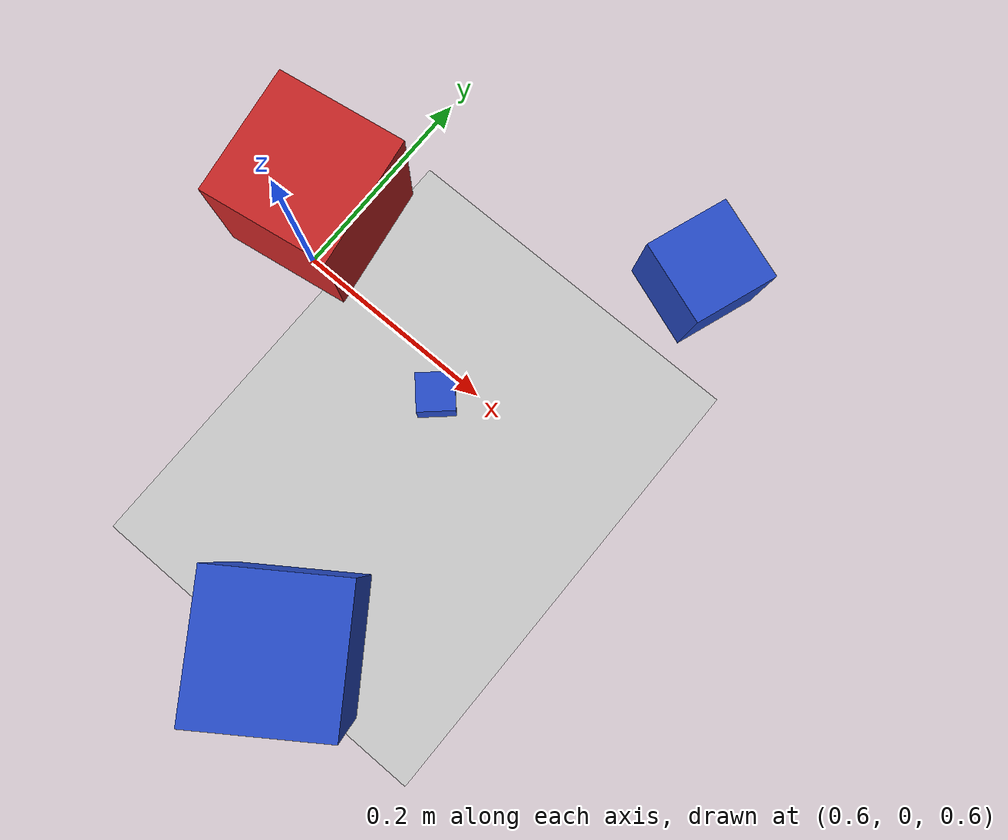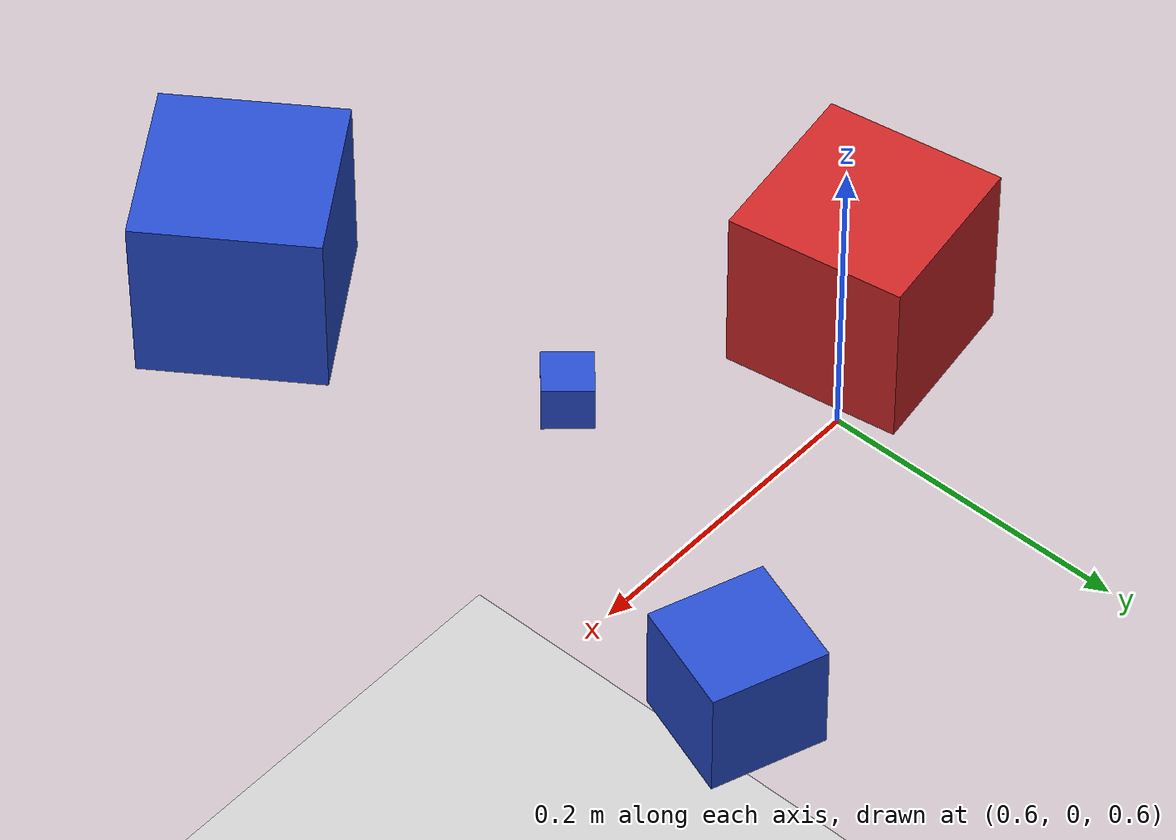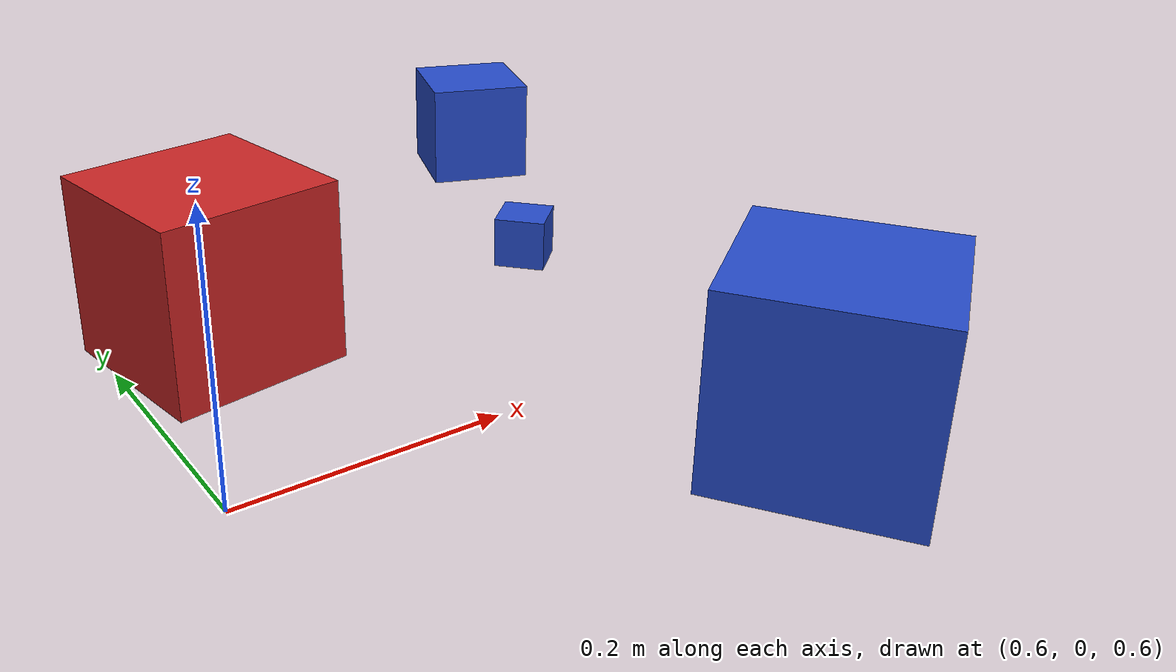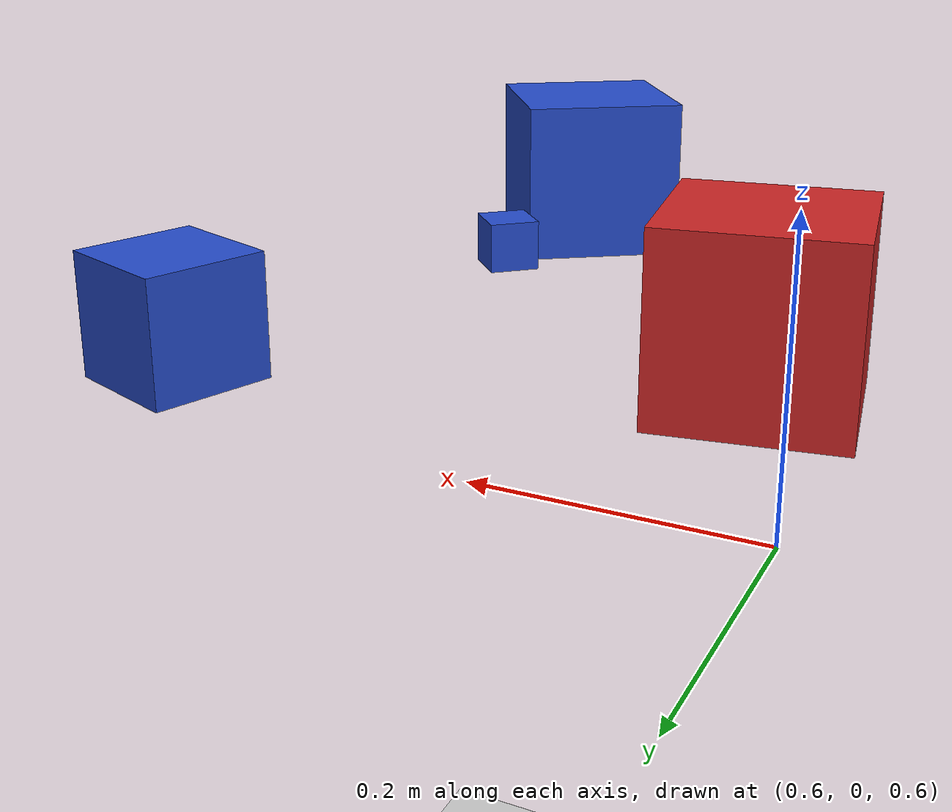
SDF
<sdf version="1.4">
 <world name="simple">
  <include><uri>model://ground_plane</uri></include>
  <include><uri>model://sun</uri></include>
  <include>
   <uri>model://blue_cube7cm</uri>
   <name>block2</name>
   <pose>0.886632035749 0.16667164924 0.75 0 0 1.22725131087</pose>
  </include>
  <include>
   <uri>model://red_cube11cm</uri>
   <name>block3</name>
   <pose>0.611234216065 0.0226102152859 0.75 0 0 1.72743149361</pose>
  </include>
  <include>
   <uri>model://blue_cube11cm</uri>
   <name>block4</name>
   <pose>0.823867588807 -0.25312295358 0.75 0 0 -0.966951935709</pose>
  </include>
  <include>
   <uri>model://blue_cube3cm</uri>
   <name>block6</name>
   <pose>0.790319413918 -0.0389138995935 0.75 0 0 2.31019326958</pose>
  </include>
 </world>
</sdf>

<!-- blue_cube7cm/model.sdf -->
<sdf version='1.4'>
  <model name="blue_cube7cm">
      <static>0</static>
      <link name='link'>
        <inertial>
          <mass>0.3</mass>
          <inertia>
            <ixx>0.001</ixx>
            <ixy>0.000000</ixy>
            <ixz>0.000000</ixz>
            <iyy>0.001</iyy>
            <iyz>0.000000</iyz>
            <izz>0.001</izz>
          </inertia>
        </inertial>
        <collision name='collision'>
          <geometry>
            <box>
              <size>0.070 0.070 0.070</size>
            </box>
          </geometry>
          <surface>
            <friction>
              <ode>
                <mu>5.0</mu>
                <mu2>5.0</mu2>
              </ode>
            </friction>
            <contact>
              <ode>
                <kp>1000000.0</kp>
                <kd>100.0</kd>
                <max_vel>1.0</max_vel>
                <min_depth>0.002</min_depth>
              </ode>
            </contact>
          </surface>
        </collision>
        <visual name='visual'>
          <geometry>
            <box>
              <size>0.070 0.070 0.070</size>
            </box>
          </geometry>
          <material>
            <script>
              <uri>file://media/materials/scripts/gazebo.material</uri>
              <name>Gazebo/Blue</name>
            </script>
          </material>
        </visual>
        <velocity_decay>
          <linear>0.000000</linear>
          <angular>0.000000</angular>
        </velocity_decay>
        <self_collide>0</self_collide>
        <kinematic>0</kinematic>
        <gravity>1</gravity>
      </link>
  </model>
</sdf>

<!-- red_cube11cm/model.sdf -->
<sdf version='1.4'>
  <model name="red_cube11cm">
      <static>0</static>
      <link name='link'>
        <inertial>
          <mass>0.3</mass>
          <inertia>
            <ixx>0.001</ixx>
            <ixy>0.000000</ixy>
            <ixz>0.000000</ixz>
            <iyy>0.001</iyy>
            <iyz>0.000000</iyz>
            <izz>0.001</izz>
          </inertia>
        </inertial>
        <collision name='collision'>
          <geometry>
            <box>
              <size>0.110 0.110 0.110</size>
            </box>
          </geometry>
          <surface>
            <friction>
              <ode>
                <mu>5.0</mu>
                <mu2>5.0</mu2>
              </ode>
            </friction>
            <contact>
              <ode>
                <kp>1000000.0</kp>
                <kd>100.0</kd>
                <max_vel>1.0</max_vel>
                <min_depth>0.002</min_depth>
              </ode>
            </contact>
          </surface>
        </collision>
        <visual name='visual'>
          <geometry>
            <box>
              <size>0.110 0.110 0.110</size>
            </box>
          </geometry>
          <material>
            <script>
              <uri>file://media/materials/scripts/gazebo.material</uri>
              <name>Gazebo/Red</name>
            </script>
          </material>
        </visual>
        <velocity_decay>
          <linear>0.000000</linear>
          <angular>0.000000</angular>
        </velocity_decay>
        <self_collide>0</self_collide>
        <kinematic>0</kinematic>
        <gravity>1</gravity>
      </link>
  </model>
</sdf>

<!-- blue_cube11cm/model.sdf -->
<sdf version='1.4'>
  <model name="blue_cube11cm">
      <static>0</static>
      <link name='link'>
        <inertial>
          <mass>0.3</mass>
          <inertia>
            <ixx>0.001</ixx>
            <ixy>0.000000</ixy>
            <ixz>0.000000</ixz>
            <iyy>0.001</iyy>
            <iyz>0.000000</iyz>
            <izz>0.001</izz>
          </inertia>
        </inertial>
        <collision name='collision'>
          <geometry>
            <box>
              <size>0.110 0.110 0.110</size>
            </box>
          </geometry>
          <surface>
            <friction>
              <ode>
                <mu>5.0</mu>
                <mu2>5.0</mu2>
              </ode>
            </friction>
            <contact>
              <ode>
                <kp>1000000.0</kp>
                <kd>100.0</kd>
                <max_vel>1.0</max_vel>
                <min_depth>0.002</min_depth>
              </ode>
            </contact>
          </surface>
        </collision>
        <visual name='visual'>
          <geometry>
            <box>
              <size>0.110 0.110 0.110</size>
            </box>
          </geometry>
          <material>
            <script>
              <uri>file://media/materials/scripts/gazebo.material</uri>
              <name>Gazebo/Blue</name>
            </script>
          </material>
        </visual>
        <velocity_decay>
          <linear>0.000000</linear>
          <angular>0.000000</angular>
        </velocity_decay>
        <self_collide>0</self_collide>
        <kinematic>0</kinematic>
        <gravity>1</gravity>
      </link>
  </model>
</sdf>

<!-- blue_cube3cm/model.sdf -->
<sdf version='1.4'>
  <model name="blue_cube3cm">
      <static>0</static>
      <link name='link'>
        <inertial>
          <mass>0.3</mass>
          <inertia>
            <ixx>0.001</ixx>
            <ixy>0.000000</ixy>
            <ixz>0.000000</ixz>
            <iyy>0.001</iyy>
            <iyz>0.000000</iyz>
            <izz>0.001</izz>
          </inertia>
        </inertial>
        <collision name='collision'>
          <geometry>
            <box>
              <size>0.030 0.030 0.030</size>
            </box>
          </geometry>
          <surface>
            <friction>
              <ode>
                <mu>5.0</mu>
                <mu2>5.0</mu2>
              </ode>
            </friction>
            <contact>
              <ode>
                <kp>1000000.0</kp>
                <kd>100.0</kd>
                <max_vel>1.0</max_vel>
                <min_depth>0.002</min_depth>
              </ode>
            </contact>
          </surface>
        </collision>
        <visual name='visual'>
          <geometry>
            <box>
              <size>0.030 0.030 0.030</size>
            </box>
          </geometry>
          <material>
            <script>
              <uri>file://media/materials/scripts/gazebo.material</uri>
              <name>Gazebo/Blue</name>
            </script>
          </material>
        </visual>
        <velocity_decay>
          <linear>0.000000</linear>
          <angular>0.000000</angular>
        </velocity_decay>
        <self_collide>0</self_collide>
        <kinematic>0</kinematic>
        <gravity>1</gravity>
      </link>
  </model>
</sdf>
